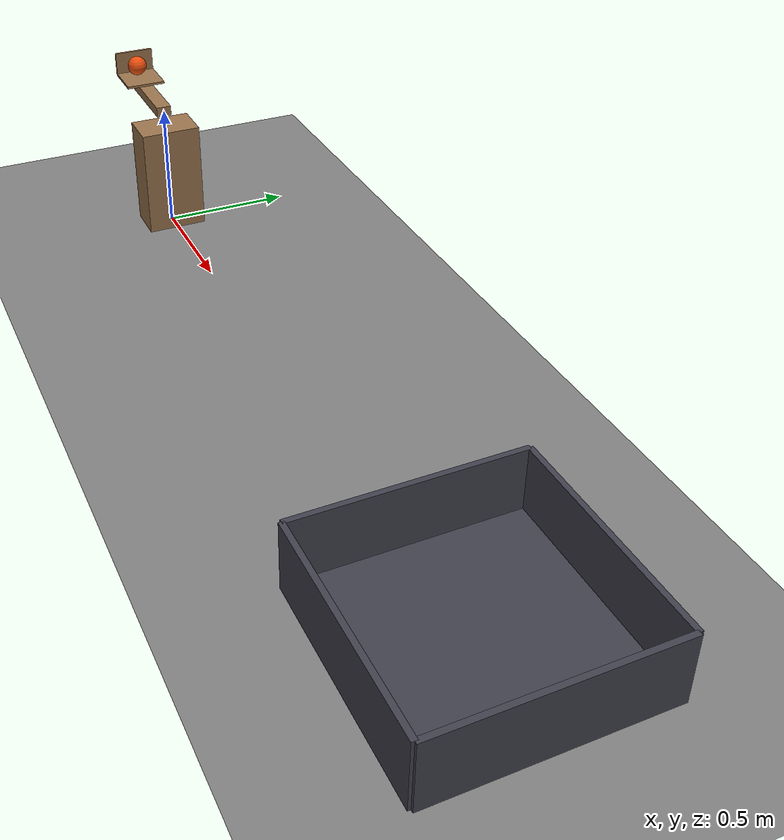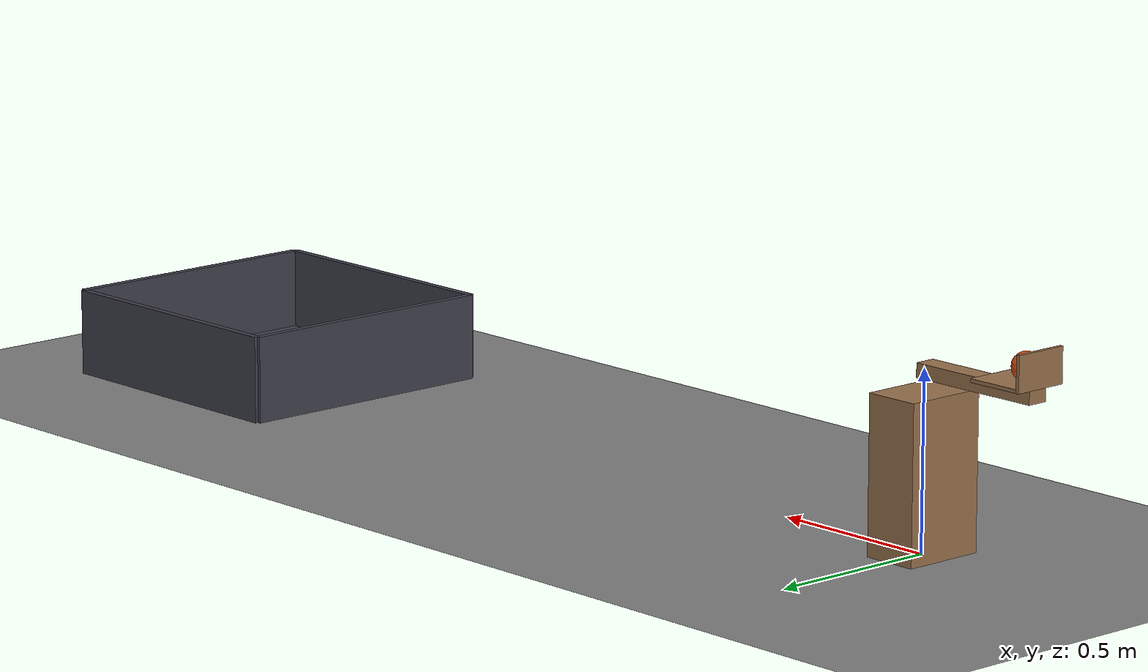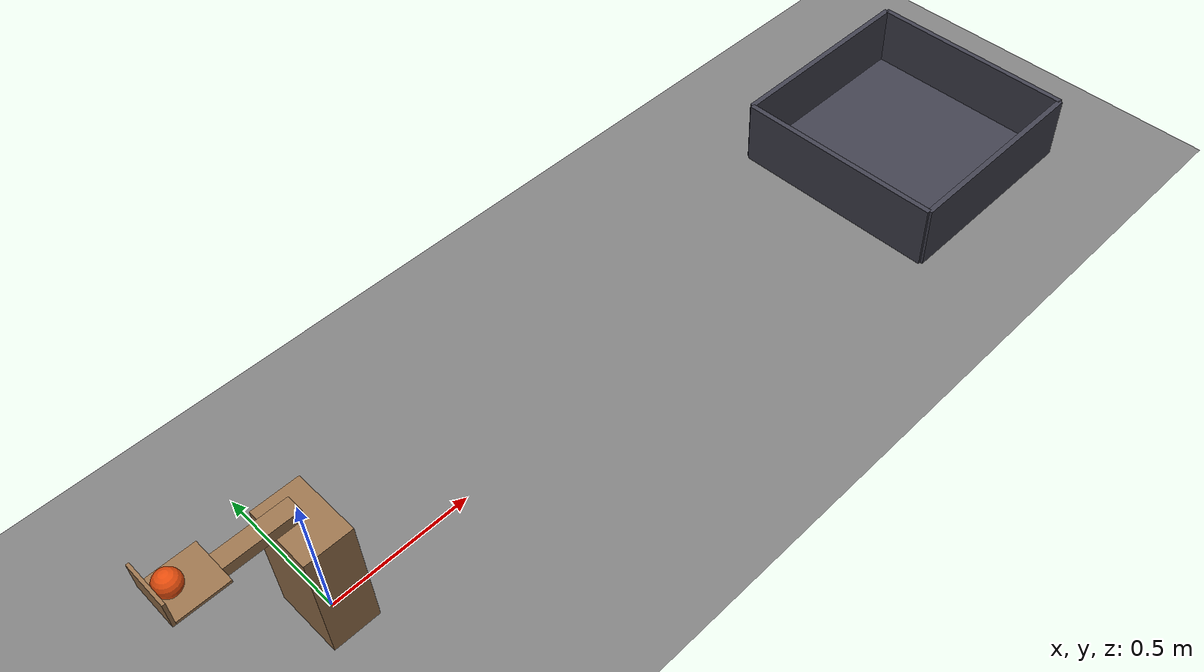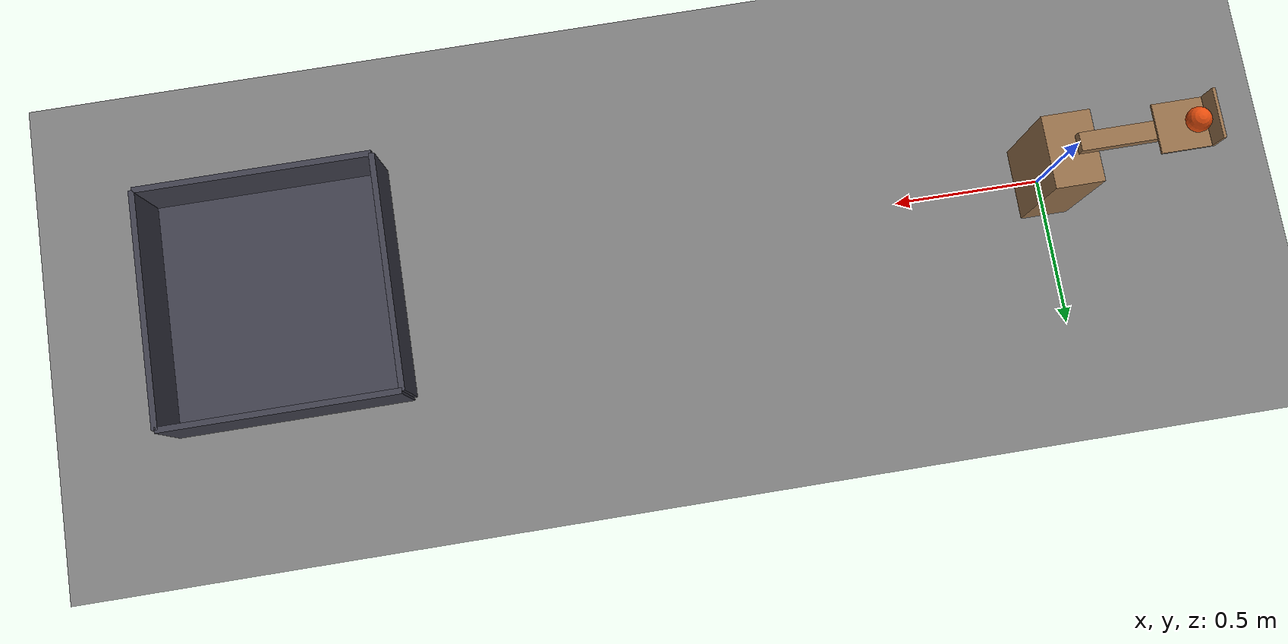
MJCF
<mujoco model="catapult_into_a_bucket">
  <compiler angle="radian"/>
  <option timestep="0.002"/>
  <worldbody>
    <geom name="floor" type="plane" size="8 8 0.1" friction="0.8 0.005 0.002"/>
    <geom name="catapult_stand" type="box" pos="0 0 0.22" size="0.08 0.12 0.22" rgba="0.6 0.45 0.3 1"/>
    <body name="catapult" pos="0 0 0.5">
      <joint name="catapult_hinge" type="hinge" pos="0 0 0" axis="0 1 0" limited="true" range="0 0.610865" stiffness="4.53" springref="1.5708" damping="0" armature="0.001"/>
      <geom name="catapult_arm" type="box" pos="-0.2 0 0" size="0.2 0.03 0.02" mass="0.3" rgba="0.6 0.45 0.3 1"/>
      <geom name="catapult_scoop_base" type="box" pos="-0.32 0 0.025" size="0.08 0.08 0.005" mass="0.02" rgba="0.6 0.45 0.3 1"/>
      <geom name="catapult_scoop_back" type="box" pos="-0.405 0 0.07" size="0.005 0.08 0.05" mass="0.01" rgba="0.6 0.45 0.3 1"/>
    </body>
    <body name="ball" pos="-0.36 0 0.57">
      <freejoint/>
      <geom name="ball" type="sphere" pos="0 0 0" size="0.04" mass="0.1" condim="6" friction="0.8 0.01 0.004" rgba="0.9 0.3 0.05 1"/>
    </body>
    <body name="bucket">
      <geom name="bucket_base" type="box" pos="2.64 0 0.01" size="0.4 0.4 0.01" friction="0.9 0.01 0.004" solref="0.01 1" rgba="0.25 0.25 0.3 1"/>
      <geom name="bucket_near_wall" type="box" pos="2.24 0 0.125" size="0.01 0.4 0.125" friction="0.9 0.01 0.004" solref="0.01 1" rgba="0.25 0.25 0.3 1"/>
      <geom name="bucket_far_wall" type="box" pos="3.04 0 0.125" size="0.01 0.4 0.125" friction="0.9 0.01 0.004" solref="0.01 1" rgba="0.25 0.25 0.3 1"/>
      <geom name="bucket_left_wall" type="box" pos="2.64 0.4 0.125" size="0.4 0.01 0.125" friction="0.9 0.01 0.004" solref="0.01 1" rgba="0.25 0.25 0.3 1"/>
      <geom name="bucket_right_wall" type="box" pos="2.64 -0.4 0.125" size="0.4 0.01 0.125" friction="0.9 0.01 0.004" solref="0.01 1" rgba="0.25 0.25 0.3 1"/>
    </body>
  </worldbody>
  <keyframe>
    <key name="start" qpos="0 -0.36 0 0.57 1 0 0 0" qvel="0 0 0 0 0 0 0"/>
  </keyframe>
</mujoco>
